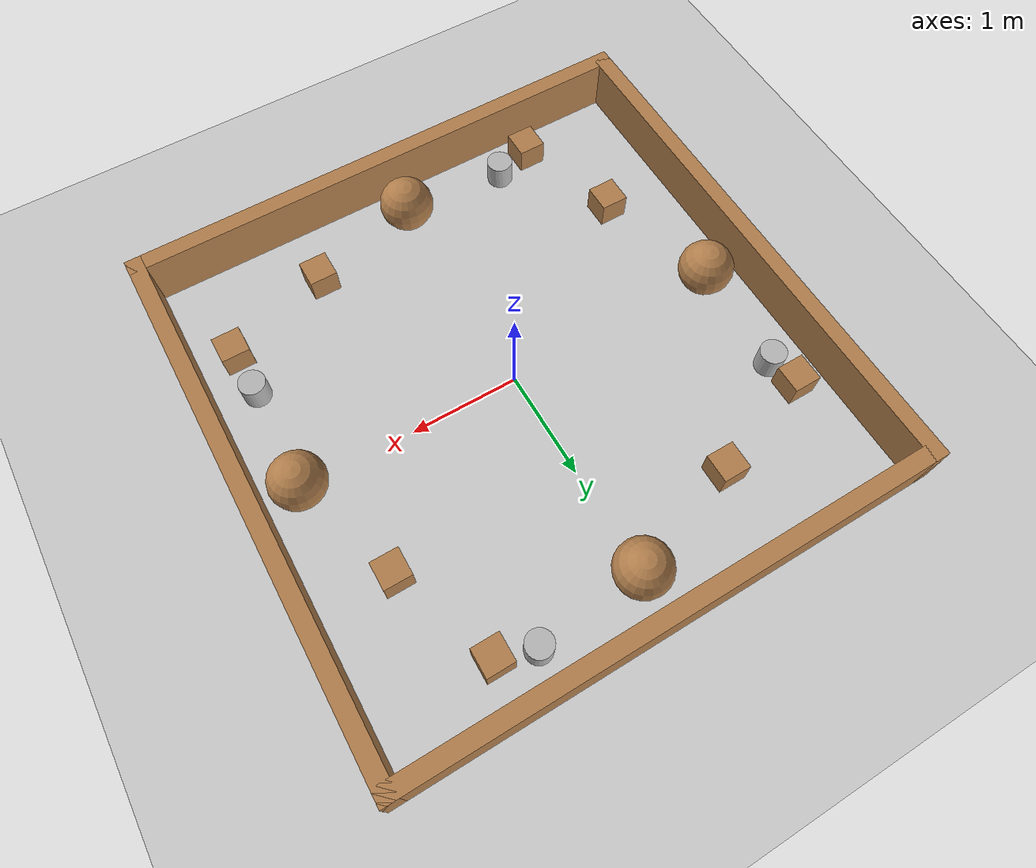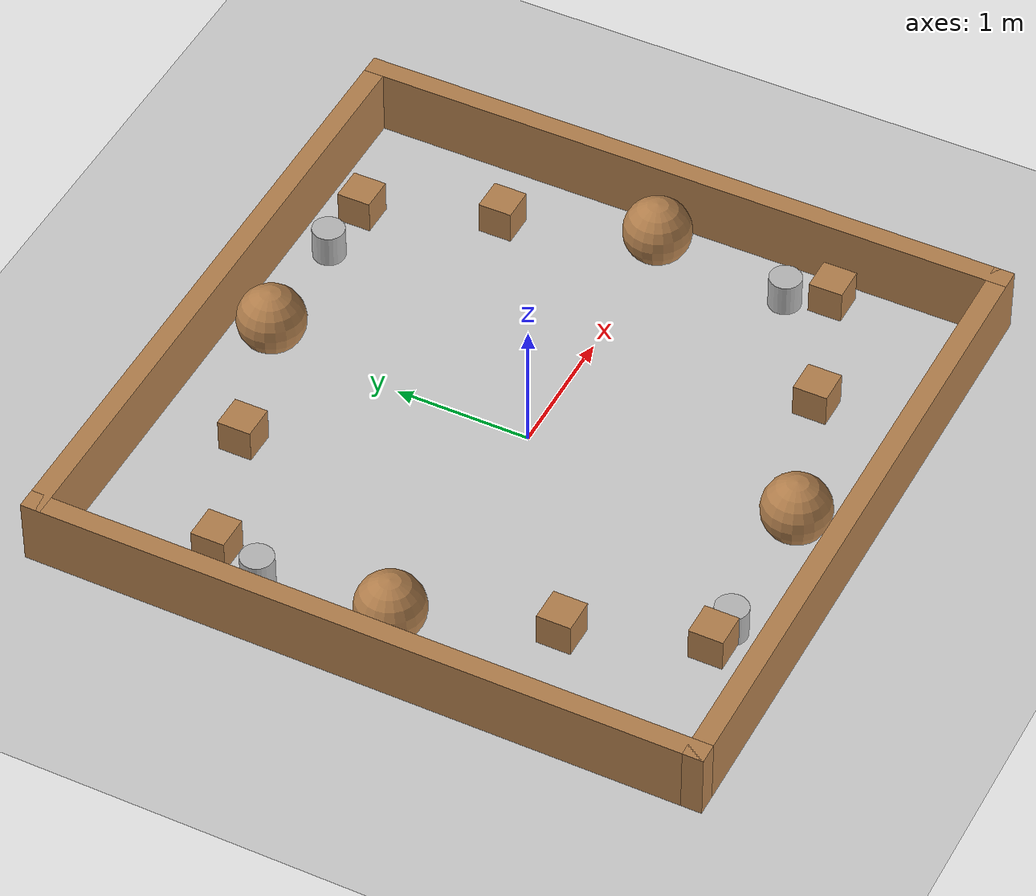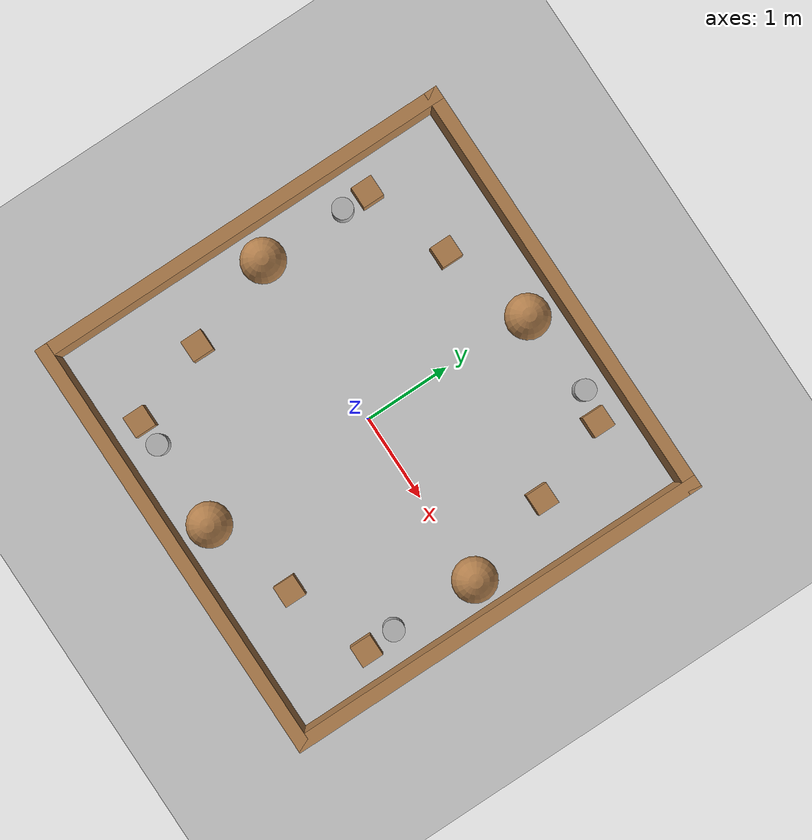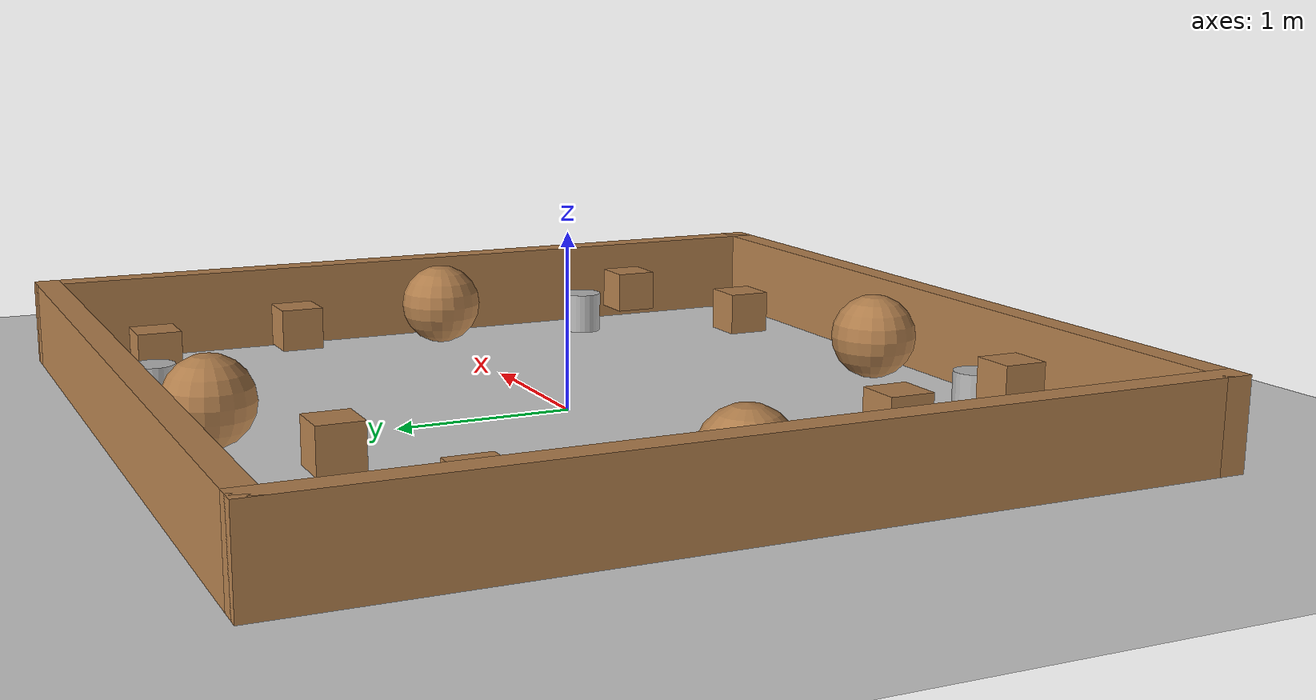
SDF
<sdf version="1.7">
 <world name="default">
  <light name="sun" type="directional">
   <pose>0 0 10 0 -0 0</pose>
   <diffuse>0.8 0.8 0.8 1</diffuse>
   <specular>0.2 0.2 0.2 1</specular>
   <attenuation>
    <range>1000</range>
    <constant>0.9</constant>
    <linear>0.01</linear>
    <quadratic>0.001</quadratic>
   </attenuation>
   <direction>-0.5 0.1 -0.9</direction>
   <spot><inner_angle>0</inner_angle><outer_angle>0</outer_angle><falloff>0</falloff></spot>
  </light>
  <model name="ground_plane">
   <static>1</static>
   <link name="link">
    <collision name="collision">
     <geometry><plane><normal>0 0 1</normal><size>100 100</size></plane></geometry>
     <surface>
      <contact><collide_bitmask>65535</collide_bitmask></contact>
      <friction><ode><mu>100</mu><mu2>50</mu2></ode></friction>
     </surface>
    </collision>
    <visual name="visual">
     <cast_shadows>0</cast_shadows>
     <geometry><plane><normal>0 0 1</normal><size>100 100</size></plane></geometry>
     <material>
      <script><uri>file://media/materials/scripts/gazebo.material</uri><name>Gazebo/Grey</name></script>
     </material>
    </visual>
   </link>
  </model>
  <physics type="ode">
   <real_time_update_rate>1000</real_time_update_rate>
   <max_step_size>0.001</max_step_size>
   <real_time_factor>1</real_time_factor>
   <ode>
    <solver>
     <type>quick</type>
     <iters>150</iters>
     <precon_iters>0</precon_iters>
     <sor>1.4</sor>
     <use_dynamic_moi_rescaling>1</use_dynamic_moi_rescaling>
    </solver>
    <constraints>
     <cfm>1e-05</cfm>
     <erp>0.2</erp>
     <contact_max_correcting_vel>2000</contact_max_correcting_vel>
     <contact_surface_layer>0.01</contact_surface_layer>
    </constraints>
   </ode>
  </physics>
  <model name="obstacle_1">
   <pose>-2 1 0.124991 0 -0 0</pose>
   <link name="link">
    <collision name="collision">
     <geometry><cylinder><radius>0.12</radius><length>0.25</length></cylinder></geometry>
    </collision>
    <visual name="visual">
     <geometry><cylinder><radius>0.12</radius><length>0.25</length></cylinder></geometry>
    </visual>
    <inertial>
     <inertia><ixx>1</ixx><ixy>0</ixy><ixz>0</ixz><iyy>1</iyy><iyz>0</iyz><izz>1</izz></inertia>
     <mass>1</mass>
    </inertial>
   </link>
  </model>
  <model name="obstacle_2">
   <pose>-1 -2 0.124991 0 -0 0</pose>
   <link name="link">
    <collision name="collision">
     <geometry><cylinder><radius>0.12</radius><length>0.25</length></cylinder></geometry>
    </collision>
    <visual name="visual">
     <geometry><cylinder><radius>0.12</radius><length>0.25</length></cylinder></geometry>
    </visual>
    <inertial>
     <inertia><ixx>1</ixx><ixy>0</ixy><ixz>0</ixz><iyy>1</iyy><iyz>0</iyz><izz>1</izz></inertia>
     <mass>1</mass>
    </inertial>
   </link>
  </model>
  <model name="obstacle_3">
   <pose>1.00562 2.07869 0.124991 0 0 -0.00285</pose>
   <link name="link">
    <collision name="collision">
     <geometry><cylinder><radius>0.12</radius><length>0.25</length></cylinder></geometry>
    </collision>
    <visual name="visual">
     <geometry><cylinder><radius>0.12</radius><length>0.25</length></cylinder></geometry>
    </visual>
    <inertial>
     <inertia><ixx>1</ixx><ixy>0</ixy><ixz>0</ixz><iyy>1</iyy><iyz>0</iyz><izz>1</izz></inertia>
     <mass>1</mass>
    </inertial>
   </link>
  </model>
  <model name="obstacle_4">
   <pose>2 -1 0.124991 0 -0 0</pose>
   <link name="link">
    <collision name="collision">
     <geometry><cylinder><radius>0.12</radius><length>0.25</length></cylinder></geometry>
    </collision>
    <visual name="visual">
     <geometry><cylinder><radius>0.12</radius><length>0.25</length></cylinder></geometry>
    </visual>
    <inertial>
     <inertia><ixx>1</ixx><ixy>0</ixy><ixz>0</ixz><iyy>1</iyy><iyz>0</iyz><izz>1</izz></inertia>
     <mass>1</mass>
    </inertial>
   </link>
  </model>
  <model name="turtlebot3_plaza_empty">
   <link name="Wall_1">
    <collision name="Wall_0_Collision">
     <geometry><box><size>5 0.15 0.5</size></box></geometry>
     <pose>0 0 0.25 0 -0 0</pose>
    </collision>
    <visual name="Wall_0_Visual">
     <pose>0 0 0.25 0 -0 0</pose>
     <geometry><box><size>5 0.15 0.5</size></box></geometry>
     <material>
      <script><uri>file://media/materials/scripts/gazebo.material</uri><name>Gazebo/Wood</name></script>
      <ambient>1 1 1 1</ambient>
     </material>
    </visual>
    <pose>-2.425 0 0 0 -0 1.5708</pose>
   </link>
   <link name="Wall_2">
    <collision name="Wall_2_Collision">
     <geometry><box><size>5 0.15 0.5</size></box></geometry>
     <pose>0 0 0.25 0 -0 0</pose>
    </collision>
    <visual name="Wall_2_Visual">
     <pose>0 0 0.25 0 -0 0</pose>
     <geometry><box><size>5 0.15 0.5</size></box></geometry>
     <material>
      <script><uri>file://media/materials/scripts/gazebo.material</uri><name>Gazebo/Wood</name></script>
      <ambient>1 1 1 1</ambient>
     </material>
    </visual>
    <pose>0 2.425 0 0 -0 0</pose>
   </link>
   <link name="Wall_3">
    <collision name="Wall_3_Collision">
     <geometry><box><size>5 0.15 0.5</size></box></geometry>
     <pose>0 0 0.25 0 -0 0</pose>
    </collision>
    <visual name="Wall_3_Visual">
     <pose>0 0 0.25 0 -0 0</pose>
     <geometry><box><size>5 0.15 0.5</size></box></geometry>
     <material>
      <script><uri>file://media/materials/scripts/gazebo.material</uri><name>Gazebo/Wood</name></script>
      <ambient>1 1 1 1</ambient>
     </material>
    </visual>
    <pose>2.425 0 0 0 0 -1.5708</pose>
   </link>
   <link name="Wall_4">
    <collision name="Wall_4_Collision">
     <geometry><box><size>5 0.15 0.5</size></box></geometry>
     <pose>0 0 0.25 0 -0 0</pose>
    </collision>
    <visual name="Wall_4_Visual">
     <pose>0 0 0.25 0 -0 0</pose>
     <geometry><box><size>5 0.15 0.5</size></box></geometry>
     <material>
      <script><uri>file://media/materials/scripts/gazebo.material</uri><name>Gazebo/Wood</name></script>
      <ambient>1 1 1 1</ambient>
     </material>
    </visual>
    <pose>0 -2.425 0 0 -0 3.14159</pose>
   </link>
   <static>1</static>
  </model>
  <scene><ambient>0.4 0.4 0.4 1</ambient><background>0.7 0.7 0.7 1</background><shadows>1</shadows></scene>
  <gravity>0 0 -9.8</gravity>
  <magnetic_field>6e-06 2.3e-05 -4.2e-05</magnetic_field>
  <atmosphere type="adiabatic"/>
  <spherical_coordinates>
   <surface_model>EARTH_WGS84</surface_model>
   <latitude_deg>0</latitude_deg>
   <longitude_deg>0</longitude_deg>
   <elevation>0</elevation>
   <heading_deg>0</heading_deg>
  </spherical_coordinates>
  <model name="stage3_obs">
   <link name="link_0">
    <inertial>
     <mass>1</mass>
     <inertia><ixx>0.1</ixx><ixy>0</ixy><ixz>0</ixz><iyy>0.1</iyy><iyz>0</iyz><izz>0.1</izz></inertia>
    </inertial>
    <pose>2.02532 0.002804 0 0 -0 0</pose>
    <visual name="visual">
     <geometry><sphere><radius>0.25</radius></sphere></geometry>
     <material>
      <lighting>1</lighting>
      <script><uri>file://media/materials/scripts/gazebo.material</uri><name>Gazebo/Wood</name></script>
      <shader type="pixel"><normal_map>__default__</normal_map></shader>
      <ambient>0.3 0.3 0.3 1</ambient>
      <diffuse>0.7 0.7 0.7 1</diffuse>
      <specular>0.01 0.01 0.01 1</specular>
      <emissive>0 0 0 1</emissive>
     </material>
    </visual>
    <collision name="collision">
     <geometry><sphere><radius>0.25</radius></sphere></geometry>
     <surface>
      <friction>
       <ode><mu>1</mu><mu2>1</mu2><fdir1>0 0 0</fdir1><slip1>0</slip1><slip2>0</slip2></ode>
       <torsional>
        <coefficient>1</coefficient>
        <patch_radius>0</patch_radius>
        <surface_radius>0</surface_radius>
        <use_patch_radius>1</use_patch_radius>
        <ode><slip>0</slip></ode>
       </torsional>
      </friction>
      <bounce><restitution_coefficient>0</restitution_coefficient><threshold>1e+06</threshold></bounce>
      <contact>
       <collide_without_contact>0</collide_without_contact>
       <collide_without_contact_bitmask>1</collide_without_contact_bitmask>
       <collide_bitmask>1</collide_bitmask>
       <ode>
        <soft_cfm>0</soft_cfm>
        <soft_erp>0.2</soft_erp>
        <kp>1e+13</kp>
        <kd>1</kd>
        <max_vel>0.01</max_vel>
        <min_depth>0</min_depth>
       </ode>
       <bullet>
        <split_impulse>1</split_impulse>
        <split_impulse_penetration_threshold>-0.01</split_impulse_penetration_threshold>
        <soft_cfm>0</soft_cfm>
        <soft_erp>0.2</soft_erp>
        <kp>1e+13</kp>
        <kd>1</kd>
       </bullet>
      </contact>
     </surface>
    </collision>
   </link>
   <link name="link_0_clone">
    <inertial>
     <mass>1</mass>
     <inertia><ixx>0.1</ixx><ixy>0</ixy><ixz>0</ixz><iyy>0.1</iyy><iyz>0</iyz><izz>0.1</izz></inertia>
    </inertial>
    <pose>0.025532 1.99735 0 0 -0 0</pose>
    <visual name="visual">
     <geometry><sphere><radius>0.25</radius></sphere></geometry>
     <material>
      <lighting>1</lighting>
      <script><uri>file://media/materials/scripts/gazebo.material</uri><name>Gazebo/Wood</name></script>
      <shader type="pixel"><normal_map>__default__</normal_map></shader>
      <ambient>0.3 0.3 0.3 1</ambient>
      <diffuse>0.7 0.7 0.7 1</diffuse>
      <specular>0.01 0.01 0.01 1</specular>
      <emissive>0 0 0 1</emissive>
     </material>
    </visual>
    <collision name="collision">
     <geometry><sphere><radius>0.25</radius></sphere></geometry>
     <surface>
      <friction>
       <ode><mu>1</mu><mu2>1</mu2><fdir1>0 0 0</fdir1><slip1>0</slip1><slip2>0</slip2></ode>
       <torsional>
        <coefficient>1</coefficient>
        <patch_radius>0</patch_radius>
        <surface_radius>0</surface_radius>
        <use_patch_radius>1</use_patch_radius>
        <ode><slip>0</slip></ode>
       </torsional>
      </friction>
      <bounce><restitution_coefficient>0</restitution_coefficient><threshold>1e+06</threshold></bounce>
      <contact>
       <collide_without_contact>0</collide_without_contact>
       <collide_without_contact_bitmask>1</collide_without_contact_bitmask>
       <collide_bitmask>1</collide_bitmask>
       <ode>
        <soft_cfm>0</soft_cfm>
        <soft_erp>0.2</soft_erp>
        <kp>1e+13</kp>
        <kd>1</kd>
        <max_vel>0.01</max_vel>
        <min_depth>0</min_depth>
       </ode>
       <bullet>
        <split_impulse>1</split_impulse>
        <split_impulse_penetration_threshold>-0.01</split_impulse_penetration_threshold>
        <soft_cfm>0</soft_cfm>
        <soft_erp>0.2</soft_erp>
        <kp>1e+13</kp>
        <kd>1</kd>
       </bullet>
      </contact>
     </surface>
    </collision>
   </link>
   <link name="link_0_clone_0">
    <inertial>
     <mass>1</mass>
     <inertia><ixx>0.1</ixx><ixy>0</ixy><ixz>0</ixz><iyy>0.1</iyy><iyz>0</iyz><izz>0.1</izz></inertia>
    </inertial>
    <pose>-2.00251 0.000469 0 0 -0 0</pose>
    <visual name="visual">
     <geometry><sphere><radius>0.25</radius></sphere></geometry>
     <material>
      <lighting>1</lighting>
      <script><uri>file://media/materials/scripts/gazebo.material</uri><name>Gazebo/Wood</name></script>
      <shader type="pixel"><normal_map>__default__</normal_map></shader>
      <ambient>0.3 0.3 0.3 1</ambient>
      <diffuse>0.7 0.7 0.7 1</diffuse>
      <specular>0.01 0.01 0.01 1</specular>
      <emissive>0 0 0 1</emissive>
     </material>
    </visual>
    <collision name="collision">
     <geometry><sphere><radius>0.25</radius></sphere></geometry>
     <surface>
      <friction>
       <ode><mu>1</mu><mu2>1</mu2><fdir1>0 0 0</fdir1><slip1>0</slip1><slip2>0</slip2></ode>
       <torsional>
        <coefficient>1</coefficient>
        <patch_radius>0</patch_radius>
        <surface_radius>0</surface_radius>
        <use_patch_radius>1</use_patch_radius>
        <ode><slip>0</slip></ode>
       </torsional>
      </friction>
      <bounce><restitution_coefficient>0</restitution_coefficient><threshold>1e+06</threshold></bounce>
      <contact>
       <collide_without_contact>0</collide_without_contact>
       <collide_without_contact_bitmask>1</collide_without_contact_bitmask>
       <collide_bitmask>1</collide_bitmask>
       <ode>
        <soft_cfm>0</soft_cfm>
        <soft_erp>0.2</soft_erp>
        <kp>1e+13</kp>
        <kd>1</kd>
        <max_vel>0.01</max_vel>
        <min_depth>0</min_depth>
       </ode>
       <bullet>
        <split_impulse>1</split_impulse>
        <split_impulse_penetration_threshold>-0.01</split_impulse_penetration_threshold>
        <soft_cfm>0</soft_cfm>
        <soft_erp>0.2</soft_erp>
        <kp>1e+13</kp>
        <kd>1</kd>
       </bullet>
      </contact>
     </surface>
    </collision>
   </link>
   <link name="link_0_clone_1">
    <inertial>
     <mass>1</mass>
     <inertia><ixx>0.1</ixx><ixy>0</ixy><ixz>0</ixz><iyy>0.1</iyy><iyz>0</iyz><izz>0.1</izz></inertia>
    </inertial>
    <pose>0.004711 -2.00381 0 0 -0 0</pose>
    <visual name="visual">
     <geometry><sphere><radius>0.25</radius></sphere></geometry>
     <material>
      <lighting>1</lighting>
      <script><uri>file://media/materials/scripts/gazebo.material</uri><name>Gazebo/Wood</name></script>
      <shader type="pixel"><normal_map>__default__</normal_map></shader>
      <ambient>0.3 0.3 0.3 1</ambient>
      <diffuse>0.7 0.7 0.7 1</diffuse>
      <specular>0.01 0.01 0.01 1</specular>
      <emissive>0 0 0 1</emissive>
     </material>
    </visual>
    <collision name="collision">
     <geometry><sphere><radius>0.25</radius></sphere></geometry>
     <surface>
      <friction>
       <ode><mu>1</mu><mu2>1</mu2><fdir1>0 0 0</fdir1><slip1>0</slip1><slip2>0</slip2></ode>
       <torsional>
        <coefficient>1</coefficient>
        <patch_radius>0</patch_radius>
        <surface_radius>0</surface_radius>
        <use_patch_radius>1</use_patch_radius>
        <ode><slip>0</slip></ode>
       </torsional>
      </friction>
      <bounce><restitution_coefficient>0</restitution_coefficient><threshold>1e+06</threshold></bounce>
      <contact>
       <collide_without_contact>0</collide_without_contact>
       <collide_without_contact_bitmask>1</collide_without_contact_bitmask>
       <collide_bitmask>1</collide_bitmask>
       <ode>
        <soft_cfm>0</soft_cfm>
        <soft_erp>0.2</soft_erp>
        <kp>1e+13</kp>
        <kd>1</kd>
        <max_vel>0.01</max_vel>
        <min_depth>0</min_depth>
       </ode>
       <bullet>
        <split_impulse>1</split_impulse>
        <split_impulse_penetration_threshold>-0.01</split_impulse_penetration_threshold>
        <soft_cfm>0</soft_cfm>
        <soft_erp>0.2</soft_erp>
        <kp>1e+13</kp>
        <kd>1</kd>
       </bullet>
      </contact>
     </surface>
    </collision>
   </link>
   <link name="link_3">
    <inertial>
     <mass>1</mass>
     <inertia>
      <ixx>0.166667</ixx>
      <ixy>0</ixy>
      <ixz>0</ixz>
      <iyy>0.166667</iyy>
      <iyz>0</iyz>
      <izz>0.166667</izz>
     </inertia>
    </inertial>
    <pose>-1.01043 1.65009 0 0 -0 0</pose>
    <visual name="visual">
     <geometry><box><size>0.25 0.25 0.25</size></box></geometry>
     <material>
      <lighting>1</lighting>
      <script><uri>file://media/materials/scripts/gazebo.material</uri><name>Gazebo/Wood</name></script>
      <shader type="pixel"><normal_map>__default__</normal_map></shader>
      <ambient>0.3 0.3 0.3 1</ambient>
      <diffuse>0.7 0.7 0.7 1</diffuse>
      <specular>0.01 0.01 0.01 1</specular>
      <emissive>0 0 0 1</emissive>
     </material>
    </visual>
    <collision name="collision">
     <geometry><box><size>0.25 0.25 0.25</size></box></geometry>
     <surface>
      <friction>
       <ode><mu>1</mu><mu2>1</mu2><fdir1>0 0 0</fdir1><slip1>0</slip1><slip2>0</slip2></ode>
       <torsional>
        <coefficient>1</coefficient>
        <patch_radius>0</patch_radius>
        <surface_radius>0</surface_radius>
        <use_patch_radius>1</use_patch_radius>
        <ode><slip>0</slip></ode>
       </torsional>
      </friction>
      <bounce><restitution_coefficient>0</restitution_coefficient><threshold>1e+06</threshold></bounce>
      <contact>
       <collide_without_contact>0</collide_without_contact>
       <collide_without_contact_bitmask>1</collide_without_contact_bitmask>
       <collide_bitmask>1</collide_bitmask>
       <ode>
        <soft_cfm>0</soft_cfm>
        <soft_erp>0.2</soft_erp>
        <kp>1e+13</kp>
        <kd>1</kd>
        <max_vel>0.01</max_vel>
        <min_depth>0</min_depth>
       </ode>
       <bullet>
        <split_impulse>1</split_impulse>
        <split_impulse_penetration_threshold>-0.01</split_impulse_penetration_threshold>
        <soft_cfm>0</soft_cfm>
        <soft_erp>0.2</soft_erp>
        <kp>1e+13</kp>
        <kd>1</kd>
       </bullet>
      </contact>
     </surface>
    </collision>
   </link>
   <link name="link_3_clone">
    <inertial>
     <mass>1</mass>
     <inertia>
      <ixx>0.166667</ixx>
      <ixy>0</ixy>
      <ixz>0</ixz>
      <iyy>0.166667</iyy>
      <iyz>0</iyz>
      <izz>0.166667</izz>
     </inertia>
    </inertial>
    <pose>1.70276 1.05863 0 0 -0 0</pose>
    <visual name="visual">
     <geometry><box><size>0.25 0.25 0.25</size></box></geometry>
     <material>
      <lighting>1</lighting>
      <script><uri>file://media/materials/scripts/gazebo.material</uri><name>Gazebo/Wood</name></script>
      <shader type="pixel"><normal_map>__default__</normal_map></shader>
      <ambient>0.3 0.3 0.3 1</ambient>
      <diffuse>0.7 0.7 0.7 1</diffuse>
      <specular>0.01 0.01 0.01 1</specular>
      <emissive>0 0 0 1</emissive>
     </material>
    </visual>
    <collision name="collision">
     <geometry><box><size>0.25 0.25 0.25</size></box></geometry>
     <surface>
      <friction>
       <ode><mu>1</mu><mu2>1</mu2><fdir1>0 0 0</fdir1><slip1>0</slip1><slip2>0</slip2></ode>
       <torsional>
        <coefficient>1</coefficient>
        <patch_radius>0</patch_radius>
        <surface_radius>0</surface_radius>
        <use_patch_radius>1</use_patch_radius>
        <ode><slip>0</slip></ode>
       </torsional>
      </friction>
      <bounce><restitution_coefficient>0</restitution_coefficient><threshold>1e+06</threshold></bounce>
      <contact>
       <collide_without_contact>0</collide_without_contact>
       <collide_without_contact_bitmask>1</collide_without_contact_bitmask>
       <collide_bitmask>1</collide_bitmask>
       <ode>
        <soft_cfm>0</soft_cfm>
        <soft_erp>0.2</soft_erp>
        <kp>1e+13</kp>
        <kd>1</kd>
        <max_vel>0.01</max_vel>
        <min_depth>0</min_depth>
       </ode>
       <bullet>
        <split_impulse>1</split_impulse>
        <split_impulse_penetration_threshold>-0.01</split_impulse_penetration_threshold>
        <soft_cfm>0</soft_cfm>
        <soft_erp>0.2</soft_erp>
        <kp>1e+13</kp>
        <kd>1</kd>
       </bullet>
      </contact>
     </surface>
    </collision>
   </link>
   <link name="link_3_clone_0">
    <inertial>
     <mass>1</mass>
     <inertia>
      <ixx>0.166667</ixx>
      <ixy>0</ixy>
      <ixz>0</ixz>
      <iyy>0.166667</iyy>
      <iyz>0</iyz>
      <izz>0.166667</izz>
     </inertia>
    </inertial>
    <pose>1.04563 -1.67586 0 0 -0 0</pose>
    <visual name="visual">
     <geometry><box><size>0.25 0.25 0.25</size></box></geometry>
     <material>
      <lighting>1</lighting>
      <script><uri>file://media/materials/scripts/gazebo.material</uri><name>Gazebo/Wood</name></script>
      <shader type="pixel"><normal_map>__default__</normal_map></shader>
      <ambient>0.3 0.3 0.3 1</ambient>
      <diffuse>0.7 0.7 0.7 1</diffuse>
      <specular>0.01 0.01 0.01 1</specular>
      <emissive>0 0 0 1</emissive>
     </material>
    </visual>
    <collision name="collision">
     <geometry><box><size>0.25 0.25 0.25</size></box></geometry>
     <surface>
      <friction>
       <ode><mu>1</mu><mu2>1</mu2><fdir1>0 0 0</fdir1><slip1>0</slip1><slip2>0</slip2></ode>
       <torsional>
        <coefficient>1</coefficient>
        <patch_radius>0</patch_radius>
        <surface_radius>0</surface_radius>
        <use_patch_radius>1</use_patch_radius>
        <ode><slip>0</slip></ode>
       </torsional>
      </friction>
      <bounce><restitution_coefficient>0</restitution_coefficient><threshold>1e+06</threshold></bounce>
      <contact>
       <collide_without_contact>0</collide_without_contact>
       <collide_without_contact_bitmask>1</collide_without_contact_bitmask>
       <collide_bitmask>1</collide_bitmask>
       <ode>
        <soft_cfm>0</soft_cfm>
        <soft_erp>0.2</soft_erp>
        <kp>1e+13</kp>
        <kd>1</kd>
        <max_vel>0.01</max_vel>
        <min_depth>0</min_depth>
       </ode>
       <bullet>
        <split_impulse>1</split_impulse>
        <split_impulse_penetration_threshold>-0.01</split_impulse_penetration_threshold>
        <soft_cfm>0</soft_cfm>
        <soft_erp>0.2</soft_erp>
        <kp>1e+13</kp>
        <kd>1</kd>
       </bullet>
      </contact>
     </surface>
    </collision>
   </link>
   <link name="link_3_clone_1">
    <inertial>
     <mass>1</mass>
     <inertia>
      <ixx>0.166667</ixx>
      <ixy>0</ixy>
      <ixz>0</ixz>
      <iyy>0.166667</iyy>
      <iyz>0</iyz>
      <izz>0.166667</izz>
     </inertia>
    </inertial>
    <pose>-1.62871 -1.06886 0 0 -0 0</pose>
    <visual name="visual">
     <geometry><box><size>0.25 0.25 0.25</size></box></geometry>
     <material>
      <lighting>1</lighting>
      <script><uri>file://media/materials/scripts/gazebo.material</uri><name>Gazebo/Wood</name></script>
      <shader type="pixel"><normal_map>__default__</normal_map></shader>
      <ambient>0.3 0.3 0.3 1</ambient>
      <diffuse>0.7 0.7 0.7 1</diffuse>
      <specular>0.01 0.01 0.01 1</specular>
      <emissive>0 0 0 1</emissive>
     </material>
    </visual>
    <collision name="collision">
     <geometry><box><size>0.25 0.25 0.25</size></box></geometry>
     <surface>
      <friction>
       <ode><mu>1</mu><mu2>1</mu2><fdir1>0 0 0</fdir1><slip1>0</slip1><slip2>0</slip2></ode>
       <torsional>
        <coefficient>1</coefficient>
        <patch_radius>0</patch_radius>
        <surface_radius>0</surface_radius>
        <use_patch_radius>1</use_patch_radius>
        <ode><slip>0</slip></ode>
       </torsional>
      </friction>
      <bounce><restitution_coefficient>0</restitution_coefficient><threshold>1e+06</threshold></bounce>
      <contact>
       <collide_without_contact>0</collide_without_contact>
       <collide_without_contact_bitmask>1</collide_without_contact_bitmask>
       <collide_bitmask>1</collide_bitmask>
       <ode>
        <soft_cfm>0</soft_cfm>
        <soft_erp>0.2</soft_erp>
        <kp>1e+13</kp>
        <kd>1</kd>
        <max_vel>0.01</max_vel>
        <min_depth>0</min_depth>
       </ode>
       <bullet>
        <split_impulse>1</split_impulse>
        <split_impulse_penetration_threshold>-0.01</split_impulse_penetration_threshold>
        <soft_cfm>0</soft_cfm>
        <soft_erp>0.2</soft_erp>
        <kp>1e+13</kp>
        <kd>1</kd>
       </bullet>
      </contact>
     </surface>
    </collision>
   </link>
   <link name="link_3_clone_2">
    <inertial>
     <mass>1</mass>
     <inertia>
      <ixx>0.166667</ixx>
      <ixy>0</ixy>
      <ixz>0</ixz>
      <iyy>0.166667</iyy>
      <iyz>0</iyz>
      <izz>0.166667</izz>
     </inertia>
    </inertial>
    <pose>1.35111 1.99497 0 0 -0 0</pose>
    <visual name="visual">
     <geometry><box><size>0.25 0.25 0.25</size></box></geometry>
     <material>
      <lighting>1</lighting>
      <script><uri>file://media/materials/scripts/gazebo.material</uri><name>Gazebo/Wood</name></script>
      <shader type="pixel"><normal_map>__default__</normal_map></shader>
      <ambient>0.3 0.3 0.3 1</ambient>
      <diffuse>0.7 0.7 0.7 1</diffuse>
      <specular>0.01 0.01 0.01 1</specular>
      <emissive>0 0 0 1</emissive>
     </material>
    </visual>
    <collision name="collision">
     <geometry><box><size>0.25 0.25 0.25</size></box></geometry>
     <surface>
      <friction>
       <ode><mu>1</mu><mu2>1</mu2><fdir1>0 0 0</fdir1><slip1>0</slip1><slip2>0</slip2></ode>
       <torsional>
        <coefficient>1</coefficient>
        <patch_radius>0</patch_radius>
        <surface_radius>0</surface_radius>
        <use_patch_radius>1</use_patch_radius>
        <ode><slip>0</slip></ode>
       </torsional>
      </friction>
      <bounce><restitution_coefficient>0</restitution_coefficient><threshold>1e+06</threshold></bounce>
      <contact>
       <collide_without_contact>0</collide_without_contact>
       <collide_without_contact_bitmask>1</collide_without_contact_bitmask>
       <collide_bitmask>1</collide_bitmask>
       <ode>
        <soft_cfm>0</soft_cfm>
        <soft_erp>0.2</soft_erp>
        <kp>1e+13</kp>
        <kd>1</kd>
        <max_vel>0.01</max_vel>
        <min_depth>0</min_depth>
       </ode>
       <bullet>
        <split_impulse>1</split_impulse>
        <split_impulse_penetration_threshold>-0.01</split_impulse_penetration_threshold>
        <soft_cfm>0</soft_cfm>
        <soft_erp>0.2</soft_erp>
        <kp>1e+13</kp>
        <kd>1</kd>
       </bullet>
      </contact>
     </surface>
    </collision>
   </link>
   <link name="link_3_clone_3">
    <inertial>
     <mass>1</mass>
     <inertia>
      <ixx>0.166667</ixx>
      <ixy>0</ixy>
      <ixz>0</ixz>
      <iyy>0.166667</iyy>
      <iyz>0</iyz>
      <izz>0.166667</izz>
     </inertia>
    </inertial>
    <pose>2.01175 -1.35107 0 0 -0 0</pose>
    <visual name="visual">
     <geometry><box><size>0.25 0.25 0.25</size></box></geometry>
     <material>
      <lighting>1</lighting>
      <script><uri>file://media/materials/scripts/gazebo.material</uri><name>Gazebo/Wood</name></script>
      <shader type="pixel"><normal_map>__default__</normal_map></shader>
      <ambient>0.3 0.3 0.3 1</ambient>
      <diffuse>0.7 0.7 0.7 1</diffuse>
      <specular>0.01 0.01 0.01 1</specular>
      <emissive>0 0 0 1</emissive>
     </material>
    </visual>
    <collision name="collision">
     <geometry><box><size>0.25 0.25 0.25</size></box></geometry>
     <surface>
      <friction>
       <ode><mu>1</mu><mu2>1</mu2><fdir1>0 0 0</fdir1><slip1>0</slip1><slip2>0</slip2></ode>
       <torsional>
        <coefficient>1</coefficient>
        <patch_radius>0</patch_radius>
        <surface_radius>0</surface_radius>
        <use_patch_radius>1</use_patch_radius>
        <ode><slip>0</slip></ode>
       </torsional>
      </friction>
      <bounce><restitution_coefficient>0</restitution_coefficient><threshold>1e+06</threshold></bounce>
      <contact>
       <collide_without_contact>0</collide_without_contact>
       <collide_without_contact_bitmask>1</collide_without_contact_bitmask>
       <collide_bitmask>1</collide_bitmask>
       <ode>
        <soft_cfm>0</soft_cfm>
        <soft_erp>0.2</soft_erp>
        <kp>1e+13</kp>
        <kd>1</kd>
        <max_vel>0.01</max_vel>
        <min_depth>0</min_depth>
       </ode>
       <bullet>
        <split_impulse>1</split_impulse>
        <split_impulse_penetration_threshold>-0.01</split_impulse_penetration_threshold>
        <soft_cfm>0</soft_cfm>
        <soft_erp>0.2</soft_erp>
        <kp>1e+13</kp>
        <kd>1</kd>
       </bullet>
      </contact>
     </surface>
    </collision>
   </link>
   <link name="link_3_clone_4">
    <inertial>
     <mass>1</mass>
     <inertia>
      <ixx>0.166667</ixx>
      <ixy>0</ixy>
      <ixz>0</ixz>
      <iyy>0.166667</iyy>
      <iyz>0</iyz>
      <izz>0.166667</izz>
     </inertia>
    </inertial>
    <pose>-1.99068 1.3074 0 0 -0 0</pose>
    <visual name="visual">
     <geometry><box><size>0.25 0.25 0.25</size></box></geometry>
     <material>
      <lighting>1</lighting>
      <script><uri>file://media/materials/scripts/gazebo.material</uri><name>Gazebo/Wood</name></script>
      <shader type="pixel"><normal_map>__default__</normal_map></shader>
      <ambient>0.3 0.3 0.3 1</ambient>
      <diffuse>0.7 0.7 0.7 1</diffuse>
      <specular>0.01 0.01 0.01 1</specular>
      <emissive>0 0 0 1</emissive>
     </material>
    </visual>
    <collision name="collision">
     <geometry><box><size>0.25 0.25 0.25</size></box></geometry>
     <surface>
      <friction>
       <ode><mu>1</mu><mu2>1</mu2><fdir1>0 0 0</fdir1><slip1>0</slip1><slip2>0</slip2></ode>
       <torsional>
        <coefficient>1</coefficient>
        <patch_radius>0</patch_radius>
        <surface_radius>0</surface_radius>
        <use_patch_radius>1</use_patch_radius>
        <ode><slip>0</slip></ode>
       </torsional>
      </friction>
      <bounce><restitution_coefficient>0</restitution_coefficient><threshold>1e+06</threshold></bounce>
      <contact>
       <collide_without_contact>0</collide_without_contact>
       <collide_without_contact_bitmask>1</collide_without_contact_bitmask>
       <collide_bitmask>1</collide_bitmask>
       <ode>
        <soft_cfm>0</soft_cfm>
        <soft_erp>0.2</soft_erp>
        <kp>1e+13</kp>
        <kd>1</kd>
        <max_vel>0.01</max_vel>
        <min_depth>0</min_depth>
       </ode>
       <bullet>
        <split_impulse>1</split_impulse>
        <split_impulse_penetration_threshold>-0.01</split_impulse_penetration_threshold>
        <soft_cfm>0</soft_cfm>
        <soft_erp>0.2</soft_erp>
        <kp>1e+13</kp>
        <kd>1</kd>
       </bullet>
      </contact>
     </surface>
    </collision>
   </link>
   <link name="link_3_clone_5">
    <inertial>
     <mass>1</mass>
     <inertia>
      <ixx>0.166667</ixx>
      <ixy>0</ixy>
      <ixz>0</ixz>
      <iyy>0.166667</iyy>
      <iyz>0</iyz>
      <izz>0.166667</izz>
     </inertia>
    </inertial>
    <pose>-1.29959 -2.00816 0 0 -0 0</pose>
    <visual name="visual">
     <geometry><box><size>0.25 0.25 0.25</size></box></geometry>
     <material>
      <lighting>1</lighting>
      <script><uri>file://media/materials/scripts/gazebo.material</uri><name>Gazebo/Wood</name></script>
      <shader type="pixel"><normal_map>__default__</normal_map></shader>
      <ambient>0.3 0.3 0.3 1</ambient>
      <diffuse>0.7 0.7 0.7 1</diffuse>
      <specular>0.01 0.01 0.01 1</specular>
      <emissive>0 0 0 1</emissive>
     </material>
    </visual>
    <collision name="collision">
     <geometry><box><size>0.25 0.25 0.25</size></box></geometry>
     <surface>
      <friction>
       <ode><mu>1</mu><mu2>1</mu2><fdir1>0 0 0</fdir1><slip1>0</slip1><slip2>0</slip2></ode>
       <torsional>
        <coefficient>1</coefficient>
        <patch_radius>0</patch_radius>
        <surface_radius>0</surface_radius>
        <use_patch_radius>1</use_patch_radius>
        <ode><slip>0</slip></ode>
       </torsional>
      </friction>
      <bounce><restitution_coefficient>0</restitution_coefficient><threshold>1e+06</threshold></bounce>
      <contact>
       <collide_without_contact>0</collide_without_contact>
       <collide_without_contact_bitmask>1</collide_without_contact_bitmask>
       <collide_bitmask>1</collide_bitmask>
       <ode>
        <soft_cfm>0</soft_cfm>
        <soft_erp>0.2</soft_erp>
        <kp>1e+13</kp>
        <kd>1</kd>
        <max_vel>0.01</max_vel>
        <min_depth>0</min_depth>
       </ode>
       <bullet>
        <split_impulse>1</split_impulse>
        <split_impulse_penetration_threshold>-0.01</split_impulse_penetration_threshold>
        <soft_cfm>0</soft_cfm>
        <soft_erp>0.2</soft_erp>
        <kp>1e+13</kp>
        <kd>1</kd>
       </bullet>
      </contact>
     </surface>
    </collision>
   </link>
   <static>0</static>
   <pose>0 0 0.25 0 -0 0</pose>
  </model>
 </world>
</sdf>
